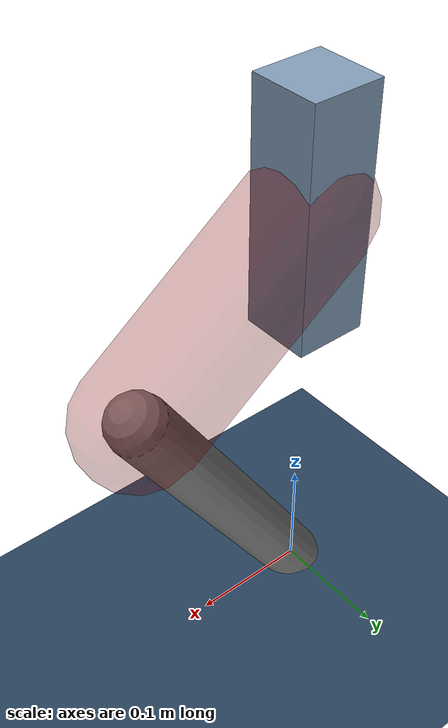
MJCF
<mujoco model="Hopper2D">
	<compiler inertiafromgeom="true" angle="radian" />
	<option timestep="0.001" integrator="implicit" cone="elliptic" solver="Newton" tolerance="1e-10" />

	<default>
		<geom contype="1" conaffinity="1" condim="3" friction="2 0.005 0.0001" solref="0.005 1" />
		<joint limited="true" damping="0.1" />
	</default>

	<asset>
		<texture name="skybox" type="skybox" builtin="gradient" rgb1=".4 .6 .8" rgb2="0 0 0" width="800" height="800" />
		<texture name="grid" type="2d" builtin="checker" rgb1=".1 .2 .3" rgb2=".2 .3 .4" width="300" height="300" mark="edge" markrgb=".2 .3 .4" />
		<material name="ground" texture="grid" texrepeat="1 1" texuniform="true" reflectance="0.1" />
		<material name="leg" rgba="0.5 0.6 0.7 1" />
	</asset>

	<worldbody>

		<geom name="floor" type="plane" size="5 5 0.25" material="ground" />

		<light directional="false" diffuse="0.8 0.8 0.8" specular="0.3 0.3 0.3" pos="0 0 2" dir="0 0 -1" />
		<light mode="targetbodycom" target="base" directional="false" diffuse="0.8 0.8 0.8" specular="0.3 0.3 0.3" pos="0 0 2" dir="0 0 -1" />

		<camera name="fixed" pos="0 -2 1" xyaxes="1 0 0 0 0 1" />
		<camera name="tracking" mode="trackcom" pos="0 -3 1" />

		<body name="root" pos="0 0 0.36267439017950864">
			<joint name="slide_x" type="slide" axis="1 0 0" range="-100 100" />
			<joint name="slide_z" type="slide" axis="0 0 1" range="0 10" />

			<body name="base" pos="0 0 0">
				<geom name="torso" type="box" size="0.03 0.03 0.1" mass="1.444" material="leg" />

				<body name="link1" pos="0 0 0" euler="0 0.6243611556926255 0">
					<joint type="hinge" axis="0 -1 0" pos="0 0 0" name="hinge1" limited="true" range="-3.14 3.14" stiffness="0" damping="0.1" />
					<geom name="thigh" type="capsule" fromto="0 0 0 0.19386870564292627 0 0" size="0.05" rgba="0.5 0 0 0.3" mass="0.7144717641073156" />

					<body name="link2" pos="0.19386870564292627 0 0" euler="0 1.5092155327713668 0">
						<joint type="hinge" axis="0 -1 0" pos="0 0 0" name="hinge2" limited="true" range="-3.14 3.14" stiffness="0" damping="0.1" />
						<geom name="shank" type="capsule" fromto="0 0 0 0.29480986893949146 0 0" size="0.025" mass="0.4792288820455423" />

					</body>
				</body>
			</body>
		</body>
	</worldbody>

	<actuator>
		<motor name="torque1" joint="hinge1" ctrlrange="-23.676237768496062 23.676237768496062" ctrllimited="true" gear="1" />
		<motor name="torque2" joint="hinge2" ctrlrange="-31.004045786660427 31.004045786660427" ctrllimited="true" gear="1" />
	</actuator>
</mujoco>
